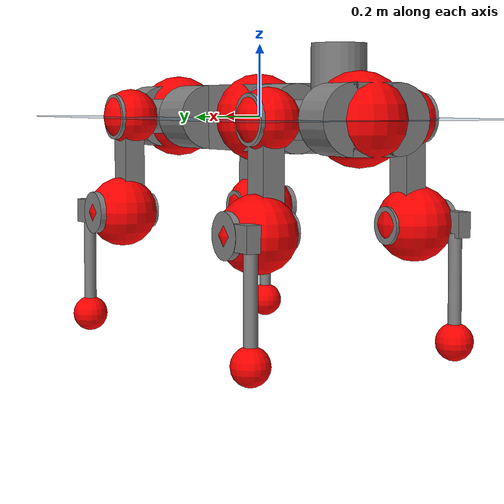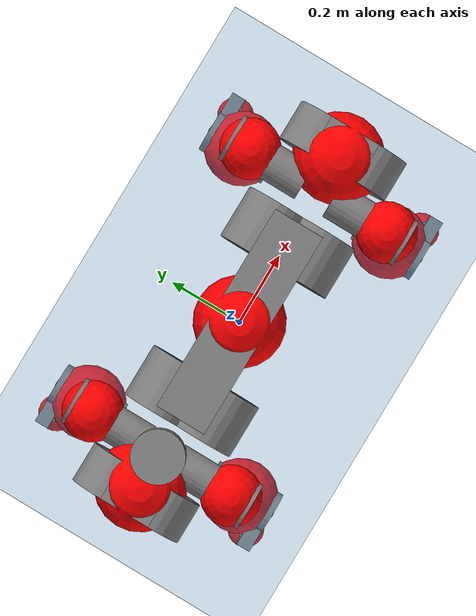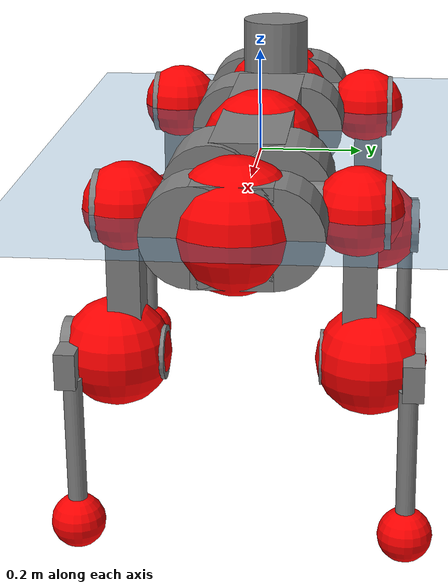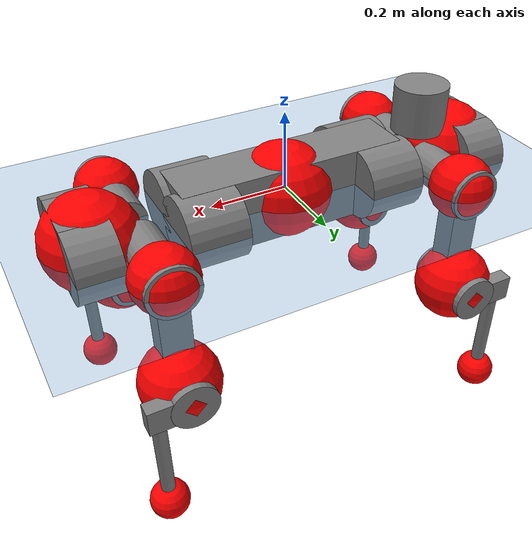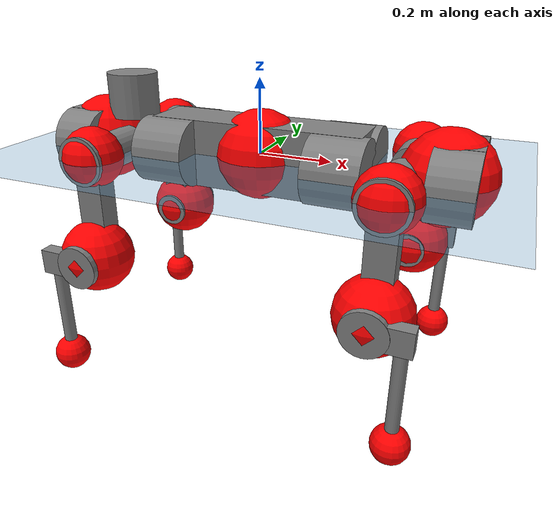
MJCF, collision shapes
<mujoco model="anymal_c">
  <compiler angle="radian" assetdir="assets" balanceinertia="true" inertiafromgeom="false"/>

  <option timestep="0.005" density="1.2" viscosity="2e-05"/>

  <size nkey="1"/>

  <visual>
    <quality shadowsize="8192"/>
    <map shadowclip="0.5"/>
  </visual>

  <default>
    <default class="/">
      <material specular="0" shininess="0.25"/>
      <geom contype="0" conaffinity="0" group="1" solref="-1000 -80"/>
      <site size="0.01 0.005 0.005" group="5"/>
      <general forcelimited="true" forcerange="-80 80" biastype="affine" gainprm="80" biasprm="0 -80 -2"/>
      <default class="anymal_c">
        <joint armature="0.01" damping="0.01" frictionloss="0.1"/>
        <default class="visual">
          <geom type="mesh" group="2"/>
          <default class="visual_zflip"/>
        </default>
        <default class="collision">
          <geom type="cylinder" group="3"/>
          <default class="foot">
            <geom size="0.03 0 0" type="sphere" condim="6" priority="1" friction="0.8 0.02 0.01" solimp="0.015 1 0.03"/>
          </default>
        </default>
      </default>
      <default class="reward_collision_sphere">
        <geom group="5" rgba="1 0 0 1"/>
      </default>
    </default>
  </default>

  <asset>
    <texture type="skybox" colorspace="auto" name="//unnamed_texture_0" builtin="gradient" rgb1="0.95 0.95 0.95" rgb2="0.95 0.95 0.95" width="100" height="600"/>
    <texture type="2d" colorspace="auto" name="texplane" builtin="checker" rgb1="0.345 0.575 0.748" rgb2="0.345 0.575 0.748" markrgb="1 1 1" width="512" height="512"/>
    <texture type="2d" colorspace="linear" name="base" file="base.png"/>
    <texture type="2d" colorspace="linear" name="top_shell" file="top_shell.png"/>
    <texture type="2d" colorspace="linear" name="bottom_shell" file="bottom_shell.png"/>
    <texture type="2d" colorspace="linear" name="remote" file="remote.png"/>
    <texture type="2d" colorspace="linear" name="hatch" file="hatch.png"/>
    <texture type="2d" colorspace="linear" name="handle" file="handle.png"/>
    <texture type="2d" colorspace="linear" name="face" file="face.png"/>
    <texture type="2d" colorspace="linear" name="battery" file="battery.png"/>
    <texture type="2d" colorspace="linear" name="lidar_cage" file="lidar_cage.png"/>
    <texture type="2d" colorspace="linear" name="depth_camera" file="depth_camera.png"/>
    <texture type="2d" colorspace="linear" name="wide_angle_camera" file="wide_angle_camera.png"/>
    <texture type="2d" colorspace="linear" name="lidar" file="lidar.png"/>
    <texture type="2d" colorspace="linear" name="drive" file="drive.png"/>
    <texture type="2d" colorspace="linear" name="hip_l" file="hip_l.png"/>
    <texture type="2d" colorspace="linear" name="shank_l" file="shank_l.png"/>
    <texture type="2d" colorspace="linear" name="foot" file="foot.png"/>
    <texture type="2d" colorspace="linear" name="thigh" file="thigh.png"/>
    <texture type="2d" colorspace="linear" name="shank_r" file="shank_r.png"/>
    <texture type="2d" colorspace="linear" name="hip_r" file="hip_r.png"/>
    <material name="MatPlane" class="/" texture="texplane" texuniform="true" texrepeat="2 2" specular="0.9" shininess="0.5"/>
    <material name="black_plastic" class="/" rgba="0.007 0.007 0.007 1"/>
    <material name="green" class="/" rgba="0.052 0.178 0.033 1"/>
    <material name="red" class="/" rgba="0.178 0.006 0.005 1"/>
    <material name="yellow" class="/" rgba="0.178 0.119 0.006 1"/>
    <material name="lwl" class="/" rgba="0.8 0.8 0.8 1"/>
    <material name="base" class="/" texture="base"/>
    <material name="top_shell" class="/" texture="top_shell"/>
    <material name="bottom_shell" class="/" texture="bottom_shell"/>
    <material name="hip_l" class="/" texture="hip_l"/>
    <material name="thigh" class="/" texture="thigh"/>
    <material name="shank_l" class="/" texture="shank_l"/>
    <material name="foot" class="/" texture="foot"/>
    <material name="hip_r" class="/" texture="hip_r"/>
    <material name="shank" class="/" texture="shank_r"/>
    <material name="hatch" class="/" texture="hatch"/>
    <material name="remote" class="/" texture="remote"/>
    <material name="handle" class="/" texture="handle"/>
    <material name="face" class="/" texture="face"/>
    <material name="depth_camera" class="/" texture="depth_camera"/>
    <material name="wide_angle_camera" class="/" texture="wide_angle_camera"/>
    <material name="battery" class="/" texture="battery"/>
    <material name="lidar_cage" class="/" texture="lidar_cage"/>
    <material name="lidar" class="/" texture="lidar"/>
    <material name="drive" class="/" texture="drive"/>
    <mesh name="base_0" class="/" file="base_0.obj"/>
    <mesh name="base_1" class="/" file="base_1.obj"/>
    <mesh name="base_2" class="/" file="base_2.obj"/>
    <mesh name="base_3" class="/" file="base_3.obj"/>
    <mesh name="base_4" class="/" file="base_4.obj"/>
    <mesh name="base_5" class="/" file="base_5.obj"/>
    <mesh name="top_shell" class="/" file="top_shell.obj"/>
    <mesh name="bottom_shell" class="/" file="bottom_shell.obj"/>
    <mesh name="remote" class="/" file="remote.obj"/>
    <mesh name="handle" class="/" file="handle.obj"/>
    <mesh name="face" class="/" file="face.obj"/>
    <mesh name="wide_angle_camera" class="/" file="wide_angle_camera.obj"/>
    <mesh name="depth_camera" class="/" file="depth_camera.obj"/>
    <mesh name="battery" class="/" file="battery.obj"/>
    <mesh name="lidar_cage" class="/" file="lidar_cage.obj"/>
    <mesh name="lidar" class="/" file="lidar.obj"/>
    <mesh name="drive" class="/" file="drive.obj"/>
    <mesh name="hip_l" class="/" file="hip_l.obj"/>
    <mesh name="thigh" class="/" file="thigh.obj"/>
    <mesh name="shank_l" class="/" file="shank_l.obj"/>
    <mesh name="foot" class="/" file="foot.obj"/>
    <mesh name="hip_r" class="/" file="hip_r.obj"/>
    <mesh name="hatch" class="/" file="hatch.obj"/>
    <mesh name="shank_r" class="/" file="shank_r.obj"/>
  </asset>

  <worldbody>
    <geom name="floor" class="/" size="100 100 0.125" type="plane" group="0" material="MatPlane"/>
    <light name="toplight_shadow" class="/" pos="0 0 5" dir="0.0990148 0.0990148 -0.990148" type="directional" ambient="0.04 0.04 0.04" diffuse="0.55 0.55 0.55" specular="0.12 0.12 0.12"/>
    <light name="toplight_fill" class="/" pos="0 0 5" dir="0.0990148 0.0990148 -0.990148" type="directional" castshadow="false" ambient="0.04 0.04 0.04" diffuse="0.3 0.3 0.3" specular="0.08 0.08 0.08"/>
    <body name="trunk" childclass="anymal_c" pos="0.00240496 0.00012383 -0.00116361" quat="0.999999 0.000714551 0.0009607 -0.000613517">
      <inertial pos="-1.28065e-06 0.000632818 0.0486748" quat="0.496123 0.503694 0.500229 0.499925" mass="18.8597" diaginertia="0.981924 0.487317 0.19072"/>
      <joint name="//unnamed_joint_0" type="free" armature="0" damping="0" frictionloss="0"/>
      <geom name="//unnamed_geom_1" class="visual" material="green" mesh="base_0"/>
      <geom name="//unnamed_geom_2" class="visual" material="yellow" mesh="base_1"/>
      <geom name="//unnamed_geom_3" class="visual" material="red" mesh="base_2"/>
      <geom name="//unnamed_geom_4" class="visual" material="black_plastic" mesh="base_3"/>
      <geom name="//unnamed_geom_5" class="visual" material="lwl" mesh="base_4"/>
      <geom name="//unnamed_geom_6" class="visual" material="base" mesh="base_5"/>
      <geom name="trunk_1" class="collision" size="0.292162 0.0705218 0.0906709" type="box"/>
      <geom name="trunk_2" class="collision" size="0.0906709 0.0730404" pos="0.237522 0.0667918 0" quat="0.707107 0 0.707107 0"/>
      <geom name="trunk_3" class="collision" size="0.0906709 0.0730404" pos="-0.237522 0.0667918 0" quat="0.707107 0 0.707107 0"/>
      <geom name="trunk_4" class="collision" size="0.0906709 0.0730404" pos="0.237522 -0.0667918 0" quat="0.707107 0 0.707107 0"/>
      <geom name="trunk_5" class="collision" size="0.0906709 0.0730404" pos="-0.237522 -0.0667918 0" quat="0.707107 0 0.707107 0"/>
      <geom name="//unnamed_geom_12" class="visual" material="top_shell" mesh="top_shell"/>
      <geom name="//unnamed_geom_13" class="visual" material="bottom_shell" mesh="bottom_shell"/>
      <geom name="//unnamed_geom_14" class="visual" material="remote" mesh="remote"/>
      <geom name="//unnamed_geom_15" class="visual" material="handle" mesh="handle"/>
      <geom name="//unnamed_geom_16" class="visual" pos="0.452658 0 0" quat="1 0 0 0" material="face" mesh="face"/>
      <geom name="trunk_6" class="collision" size="0.05541 0.0705218 0.0906709" pos="0.512721 0 0" type="box"/>
      <geom name="//unnamed_geom_18" class="collision" size="0.0906709 0.05541" pos="0.512721 0.0667918 0" quat="0.707107 0 0.707107 0"/>
      <geom name="//unnamed_geom_19" class="collision" size="0.0906709 0.05541" pos="0.512721 -0.0667918 0" quat="0.707107 0 0.707107 0"/>
      <geom name="//unnamed_geom_20" class="visual" pos="0.504143 0 -0.0276222" quat="0.965926 0 0.258819 0" material="depth_camera" mesh="depth_camera"/>
      <geom name="//unnamed_geom_21" class="visual" pos="0.560225 0 0.0146128" material="wide_angle_camera" mesh="wide_angle_camera"/>
      <geom name="//unnamed_geom_22" class="visual_zflip" pos="-0.452658 0 0" quat="0 0 0 1" material="face" mesh="face"/>
      <geom name="trunk_7" class="collision" size="0.05541 0.0705218 0.0906709" pos="-0.512721 0 0" quat="0 0 0 1" type="box"/>
      <geom name="//unnamed_geom_24" class="collision" size="0.0906709 0.05541" pos="-0.512721 -0.0667918 0" quat="0 -0.707107 0 0.707107"/>
      <geom name="//unnamed_geom_25" class="collision" size="0.0906709 0.05541" pos="-0.512721 0.0667918 0" quat="0 -0.707107 0 0.707107"/>
      <geom name="//unnamed_geom_26" class="visual" pos="-0.504143 0 -0.0276222" quat="0 -0.258819 0 0.965926" material="depth_camera" mesh="depth_camera"/>
      <geom name="//unnamed_geom_27" class="visual_zflip" pos="-0.560225 0 0.0146128" quat="0 0 0 1" material="wide_angle_camera" mesh="wide_angle_camera"/>
      <geom name="//unnamed_geom_28" class="visual" material="battery" mesh="battery"/>
      <geom name="//unnamed_geom_29" class="visual" pos="0 0.0711416 0.0292377" quat="0.683013 -0.183013 0.183013 0.683013" material="depth_camera" mesh="depth_camera"/>
      <geom name="//unnamed_geom_30" class="visual" pos="0 -0.0711416 0.0292377" quat="0.683013 0.183013 0.183013 -0.683013" material="depth_camera" mesh="depth_camera"/>
      <geom name="//unnamed_geom_31" class="visual" pos="-0.397509 0 0.071746" quat="1 0 0 0" material="lidar_cage" mesh="lidar_cage"/>
      <geom name="trunk_8" class="collision" size="0.0705218 0.0604472" pos="-0.397509 0 0.130314"/>
      <geom name="//unnamed_geom_33" class="visual" pos="-0.397509 -5.41725e-05 0.138807" quat="0.707107 0 0 -0.707107" material="lidar" mesh="lidar"/>
      <geom name="//unnamed_geom_34" class="visual" pos="0.327508 0.0992414 -3.78931e-10" quat="0.258819 0.965926 0 0" material="drive" mesh="drive"/>
      <geom name="//unnamed_geom_35" class="visual" pos="0.327508 -0.0992414 3.78931e-10" quat="0.258819 -0.965926 0 0" material="drive" mesh="drive"/>
      <geom name="//unnamed_geom_36" class="visual" pos="-0.327508 0.0992414 3.78931e-10" quat="0 0 0.965926 -0.258819" material="drive" mesh="drive"/>
      <geom name="//unnamed_geom_37" class="visual" pos="-0.327508 -0.0992414 -3.78931e-10" quat="0 0 -0.965926 -0.258819" material="drive" mesh="drive"/>
      <geom name="//unnamed_geom_38" class="visual" pos="0.126679 0 0.0712579" quat="1 0 0 0" material="hatch" mesh="hatch"/>
      <geom name="//unnamed_geom_39" class="reward_collision_sphere" size="0.120894"/>
      <geom name="//unnamed_geom_40" class="reward_collision_sphere" size="0.120894" pos="0.491426 0 0"/>
      <geom name="//unnamed_geom_41" class="reward_collision_sphere" size="0.120894" pos="-0.491426 0 0"/>
      <site name="imu" pos="0.273362 0.016363 0.0588535" size="0.0100745"/>
      <camera name="track" pos="0 -1.90834 0" quat="0.707107 0.707107 0 0" mode="trackcom"/>
      <camera name="ego_camera" pos="0.491426 0 -0.0390454" quat="-0.5 -0.5 0.5 0.5"/>
      <body name="LF_HIP" pos="0.327755 0.100588 0.00032186" quat="0.258921 0.965898 -0.000323801 -0.000288557">
        <inertial pos="0.0610128 -0.0167588 -0.00692032" quat="-0.12588 0.709937 -0.133278 0.679986" mass="2.76802" diaginertia="0.00925424 0.00391491 0.0029183"/>
        <joint name="LF_HAA" pos="0 0 0" axis="0.999901 0.000485309 -0.0140756" range="-0.668752 0.507035" armature="0.00990852" damping="0.0170465" frictionloss="0.0993209"/>
        <geom name="//unnamed_geom_42" class="visual" pos="0 -2.22908e-05 3.66124e-06" quat="0.258819 -0.965926 0 0" material="hip_l" mesh="hip_l"/>
        <geom name="//unnamed_geom_43" class="visual" pos="0.0654142 -0.0774555 -0.0448815" quat="0.183013 -0.683013 0.683013 0.183013" material="drive" mesh="drive"/>
        <geom name="//unnamed_geom_44" class="collision" size="0.0503727 0.0705218" pos="0.0654142 -0.0114117 -0.00674022" quat="-0.353553 -0.612372 0.612372 -0.353553"/>
        <body name="LF_THIGH" pos="0.0672717 -0.0689092 -0.0389809" quat="0.18262 -0.682111 0.683976 0.183169">
          <inertial pos="0.0364549 -0.00209483 -0.242532" quat="0.993202 -0.00557842 -0.0803766 0.0840162" mass="3.03885" diaginertia="0.0462221 0.0228334 0.00369214"/>
          <joint name="LF_HFE" pos="0 0 0" axis="1 -9.67294e-05 -0.000319934" range="-3.1302 3.14267" armature="0.00982959" damping="0.0133924" frictionloss="0.100483"/>
          <geom name="//unnamed_geom_45" class="visual" pos="0.00274343 4.323e-06 0" quat="0.707107 0 0 -0.707107" material="thigh" mesh="thigh"/>
          <geom name="//unnamed_geom_46" class="collision" size="0.0654845 0.0402982" pos="0.0436823 0 0" quat="0.5 0.5 -0.5 -0.5"/>
          <geom name="//unnamed_geom_47" class="collision" size="0.0377795 0.0302236 0.142367" pos="0.0327617 0 -0.137942" quat="0.707107 0 0 -0.707107" type="box"/>
          <geom name="//unnamed_geom_48" class="visual" pos="0.109533 0 -0.278199" quat="1 0 0 0" material="drive" mesh="drive"/>
          <geom name="//unnamed_geom_49" class="collision" size="0.0503727 0.0705218" pos="0.0330893 0 -0.278199" quat="0.707107 0 0.707107 0"/>
          <geom name="//unnamed_geom_50" class="reward_collision_sphere" size="0.0805963" pos="0.0273014 0 0"/>
          <body name="LF_SHANK" pos="0.108718 -0.00311051 -0.278071" quat="0.999999 -0.000202086 -0.00101111 0.000533121">
            <inertial pos="0.00322734 -0.0583688 -0.0764219" quat="0.993024 -0.114849 0.000587941 -0.0266765" mass="0.60064" diaginertia="0.0158449 0.00772396 0.00101582"/>
            <joint name="LF_KFE" pos="0 0 0" axis="0.999997 -0.00192024 -0.00119181" range="-3.19457 3.14246" armature="0.0107612" damping="0" frictionloss="0.108463"/>
            <geom name="//unnamed_geom_51" class="visual" pos="0.000894572 0.0047699 0" quat="0.707107 0 0 -0.707107" material="shank_l" mesh="shank_l"/>
            <geom name="LF_kfe_act" class="collision" size="0.0604472 0.0201491" pos="0.0218411 0 0" quat="0.5 0.5 -0.5 -0.5"/>
            <geom name="//unnamed_geom_53" class="collision" size="0.0579276 0.0340016 0.0191416" pos="0.0218411 -0.0548638 0" quat="0.5 0.5 -0.5 -0.5" type="box"/>
            <geom name="//unnamed_geom_54" class="visual" pos="0.0142511 -0.082382 -0.329905" quat="0.382683 0 0 -0.92388" material="foot" mesh="foot"/>
            <geom name="LF_calf" class="collision" size="0.0176304 0.142305" pos="0.0142513 -0.0839192 -0.164952" quat="0.707107 0 0 -0.707107"/>
            <geom name="LF_foot" class="foot" size="0.0322544" pos="0.0142513 -0.0839192 -0.307942" quat="0.707107 0 0 -0.707107"/>
            <geom name="//unnamed_geom_57" class="reward_collision_sphere" size="0.100745" pos="-0.0546028 0 0"/>
            <geom name="//unnamed_geom_58" class="reward_collision_sphere" size="0.0503727" pos="0.0142513 -0.0839192 -0.307942"/>
            <site name="LF_foot" class="foot" pos="0.0142513 -0.0839192 -0.307942" quat="0.707107 0 0 -0.707107" size="0.0100745"/>
          </body>
        </body>
      </body>
      <body name="RF_HIP" pos="0.32685 -0.0990494 -0.00249167" quat="0.260228 -0.965547 1.74355e-07 -0.000433221">
        <inertial pos="0.0635696 0.0122989 -0.00785619" quat="0.126501 0.67214 0.129254 0.717997" mass="2.81188" diaginertia="0.0086059 0.00380853 0.00277115"/>
        <joint name="RF_HAA" pos="0 0 0" axis="0.999983 -0.003817 0.00431255" range="-0.49458 0.726027" armature="0.0098922" damping="0.00943041" frictionloss="0.0868354"/>
        <geom name="//unnamed_geom_59" class="visual" pos="0 2.22906e-05 3.66123e-06" quat="0.258819 0.965926 0 0" material="hip_r" mesh="hip_r"/>
        <geom name="//unnamed_geom_60" class="visual" pos="0.0654142 0.0774555 -0.0448815" quat="0.183013 0.683013 0.683013 -0.183013" material="drive" mesh="drive"/>
        <geom name="//unnamed_geom_61" class="collision" size="0.0503727 0.0705218" pos="0.0654142 0.0114117 -0.00674022" quat="-0.353553 0.612372 0.612372 0.353553"/>
        <body name="RF_THIGH" pos="0.0654145 0.0664803 -0.0400699" quat="0.18297 0.682932 0.683029 -0.183296">
          <inertial pos="0.0355516 -0.00269906 -0.239046" quat="0.993486 -0.0140647 -0.0758534 0.0838701" mass="3.17118" diaginertia="0.0465015 0.0233043 0.00377456"/>
          <joint name="RF_HFE" pos="0 0 0" axis="0.999999 0.0012658 0.00108055" range="-3.12192 3.19433" armature="0.0100302" damping="0.0148547" frictionloss="0.10536"/>
          <geom name="//unnamed_geom_62" class="visual" pos="0.00274343 4.323e-06 0" quat="0.707107 0 0 -0.707107" material="thigh" mesh="thigh"/>
          <geom name="//unnamed_geom_63" class="collision" size="0.0654845 0.0402982" pos="0.0436823 0 0" quat="0.5 0.5 0.5 0.5"/>
          <geom name="//unnamed_geom_64" class="collision" size="0.0377795 0.0302236 0.142367" pos="0.0327617 0 -0.137942" quat="0.707107 0 0 0.707107" type="box"/>
          <geom name="//unnamed_geom_65" class="visual" pos="0.109533 0 -0.278199" quat="1 0 0 0" material="drive" mesh="drive"/>
          <geom name="//unnamed_geom_66" class="collision" size="0.0503727 0.0705218" pos="0.0330893 0 -0.278199" quat="0.707107 0 0.707107 0"/>
          <geom name="//unnamed_geom_67" class="reward_collision_sphere" size="0.0805963" pos="0.0273014 0 0"/>
          <body name="RF_SHANK" pos="0.109126 -0.00249672 -0.278441" quat="1 0.00012875 -3.19989e-05 -4.09538e-06">
            <inertial pos="0.00627786 0.058513 -0.0781328" quat="0.994015 0.105604 0.00786712 0.0268451" mass="0.599807" diaginertia="0.0157694 0.00732107 0.000961685"/>
            <joint name="RF_KFE" pos="0 0 0" axis="0.999963 -0.00579233 -0.00639546" range="-3.15028 3.18547" armature="0.0101073" damping="0.022693" frictionloss="0.0979002"/>
            <geom name="//unnamed_geom_68" class="visual" pos="0.000894567 -0.00476989 0" quat="0.707107 0 0 0.707107" material="shank" mesh="shank_r"/>
            <geom name="RF_kfe_act" class="collision" size="0.0604472 0.0201491" pos="0.0218411 0 0" quat="0.5 0.5 0.5 0.5"/>
            <geom name="//unnamed_geom_70" class="collision" size="0.0579276 0.0340016 0.0191416" pos="0.0218411 0.0548638 0" quat="0.5 0.5 0.5 0.5" type="box"/>
            <geom name="//unnamed_geom_71" class="visual" pos="0.0142516 0.082382 -0.329905" quat="0.382683 0 0 0.92388" material="foot" mesh="foot"/>
            <geom name="RF_calf" class="collision" size="0.0176304 0.142305" pos="0.0142513 0.0839192 -0.164952" quat="0.707107 0 0 0.707107"/>
            <geom name="RF_foot" class="foot" size="0.0267068" pos="0.0142513 0.0839192 -0.307942" quat="0.707107 0 0 0.707107"/>
            <geom name="//unnamed_geom_74" class="reward_collision_sphere" size="0.100745" pos="-0.0546028 0 0"/>
            <geom name="//unnamed_geom_75" class="reward_collision_sphere" size="0.0503727" pos="0.0142513 0.0839192 -0.307942"/>
            <site name="RF_foot" class="foot" pos="0.0142513 0.0839192 -0.307942" quat="0.707107 0 0 0.707107" size="0.0100745"/>
          </body>
        </body>
      </body>
      <body name="LH_HIP" pos="-0.327105 0.0997825 -0.00133652" quat="0.00014889 0.000170504 0.965919 -0.258845">
        <inertial pos="0.0624073 0.0169804 -0.0107699" quat="0.124741 0.680023 0.132615 0.710226" mass="2.90083" diaginertia="0.00893744 0.00381623 0.00297782"/>
        <joint name="LH_HAA" pos="0 0 0" axis="1 -0.000314911 0.000514448" stiffness="0.00100405" range="-0.473055 0.685767" armature="0.00878415" damping="0.0122766" frictionloss="0.114658"/>
        <geom name="//unnamed_geom_76" class="visual" pos="0 2.22906e-05 3.66123e-06" quat="-0.258819 -0.965926 0 0" material="hip_r" mesh="hip_r"/>
        <geom name="//unnamed_geom_77" class="visual" pos="0.0654142 0.0774555 -0.0448815" quat="0.183013 0.683013 0.683013 -0.183013" material="drive" mesh="drive"/>
        <geom name="//unnamed_geom_78" class="collision" size="0.0503727 0.0705218" pos="0.0654142 0.0114117 -0.00674022" quat="-0.353553 0.612372 0.612372 0.353553"/>
        <body name="LH_THIGH" pos="0.0651661 0.0662287 -0.0391631" quat="0.183318 0.683144 0.682842 -0.182852">
          <inertial pos="0.0338989 -4.03563e-05 -0.240673" quat="0.992829 -0.00543495 -0.0806499 0.088068" mass="3.21609" diaginertia="0.0468133 0.0231418 0.00378327"/>
          <joint name="LH_HFE" pos="0 0 0" axis="0.999967 0.00214522 -0.00787977" stiffness="0.00771578" range="-3.13819 3.136" armature="0.0113359" damping="0" frictionloss="0.10003"/>
          <geom name="//unnamed_geom_79" class="visual" pos="0.00274343 4.323e-06 0" quat="0.707107 0 0 -0.707107" material="thigh" mesh="thigh"/>
          <geom name="//unnamed_geom_80" class="collision" size="0.0654845 0.0402982" pos="0.0436823 0 0" quat="0.5 0.5 -0.5 -0.5"/>
          <geom name="//unnamed_geom_81" class="collision" size="0.0377795 0.0302236 0.142367" pos="0.0327617 0 -0.137942" quat="0.707107 0 0 -0.707107" type="box"/>
          <geom name="//unnamed_geom_82" class="visual" pos="0.109533 0 -0.278199" quat="1 0 0 0" material="drive" mesh="drive"/>
          <geom name="//unnamed_geom_83" class="collision" size="0.0503727 0.0705218" pos="0.0330893 0 -0.278199" quat="0.707107 0 0.707107 0"/>
          <geom name="//unnamed_geom_84" class="reward_collision_sphere" size="0.0805963" pos="0.0273014 0 0"/>
          <body name="LH_SHANK" pos="0.10996 -0.000362705 -0.280535" quat="1 -0.00042056 0.000371414 4.59643e-05">
            <inertial pos="0.00590068 0.0608366 -0.0788075" quat="0.993193 0.11195 -0.000688745 0.0321684" mass="0.600959" diaginertia="0.0154403 0.00731166 0.000960423"/>
            <joint name="LH_KFE" pos="0 0 0" axis="0.999945 0.000595839 -0.0104501" range="-3.14119 3.15885" armature="0.010918" damping="0" frictionloss="0.113719"/>
            <geom name="//unnamed_geom_85" class="visual" pos="0.000894567 -0.00476989 0" quat="-0.707107 0 0 -0.707107" material="shank" mesh="shank_r"/>
            <geom name="LH_kfe_act" class="collision" size="0.0604472 0.0201491" pos="0.0218411 0 0" quat="0.5 0.5 -0.5 -0.5"/>
            <geom name="//unnamed_geom_87" class="collision" size="0.0579276 0.0340016 0.0191416" pos="0.0218411 0.0548638 0" quat="0.5 0.5 -0.5 -0.5" type="box"/>
            <geom name="//unnamed_geom_88" class="visual" pos="0.0142516 0.082382 -0.329905" quat="-0.382683 0 0 -0.92388" material="foot" mesh="foot"/>
            <geom name="LH_calf" class="collision" size="0.0176304 0.142305" pos="0.0142513 0.0839192 -0.164952" quat="0.707107 0 0 -0.707107"/>
            <geom name="LH_foot" class="foot" size="0.0310502" pos="0.0142513 0.0839192 -0.307942" quat="0.707107 0 0 -0.707107"/>
            <geom name="//unnamed_geom_91" class="reward_collision_sphere" size="0.100745" pos="-0.0546028 0 0"/>
            <geom name="//unnamed_geom_92" class="reward_collision_sphere" size="0.0503727" pos="0.0142513 0.0839192 -0.307942"/>
            <site name="LH_foot" class="foot" pos="0.0142513 0.0839192 -0.307942" quat="0.707107 0 0 -0.707107" size="0.0100745"/>
          </body>
        </body>
      </body>
      <body name="RH_HIP" pos="-0.327612 -0.101257 -0.00116349" quat="0.000261577 -0.000361694 -0.966237 -0.257655">
        <inertial pos="0.0644382 -0.0121457 -0.0108837" quat="-0.136965 0.70899 -0.127107 0.680013" mass="2.83671" diaginertia="0.00900564 0.00385209 0.00292064"/>
        <joint name="RH_HAA" pos="0 0 0" axis="0.999913 0.00161214 0.0131142" stiffness="0.00234015" range="-0.722685 0.471055" armature="0.00942088" damping="0.0149525" frictionloss="0.0954084"/>
        <geom name="//unnamed_geom_93" class="visual" pos="0 -2.22908e-05 3.66124e-06" quat="-0.258819 0.965926 0 0" material="hip_l" mesh="hip_l"/>
        <geom name="//unnamed_geom_94" class="visual" pos="0.0654142 -0.0774555 -0.0448815" quat="-0.183013 0.683013 -0.683013 -0.183013" material="drive" mesh="drive"/>
        <geom name="//unnamed_geom_95" class="collision" size="0.0503727 0.0705218" pos="0.0654142 -0.0114117 -0.00674022" quat="0.353553 0.612372 -0.612372 0.353553"/>
        <body name="RH_THIGH" pos="0.066061 -0.0716727 -0.0437107" quat="-0.183067 0.68292 -0.68312 -0.182904">
          <inertial pos="0.0346371 -0.000228121 -0.239478" quat="0.993288 -0.00404778 -0.0799398 0.0834979" mass="3.03009" diaginertia="0.0475912 0.0243009 0.00369163"/>
          <joint name="RH_HFE" pos="0 0 0" axis="0.999998 0.00153112 0.00143004" range="-3.13616 3.20013" armature="0.0103606" damping="0.00935714" frictionloss="0.0954668"/>
          <geom name="//unnamed_geom_96" class="visual" pos="0.00274343 4.323e-06 0" quat="0.707107 0 0 -0.707107" material="thigh" mesh="thigh"/>
          <geom name="//unnamed_geom_97" class="collision" size="0.0654845 0.0402982" pos="0.0436823 0 0" quat="0.5 0.5 0.5 0.5"/>
          <geom name="//unnamed_geom_98" class="collision" size="0.0377795 0.0302236 0.142367" pos="0.0327617 0 -0.137942" quat="0.707107 0 0 0.707107" type="box"/>
          <geom name="//unnamed_geom_99" class="visual" pos="0.109533 0 -0.278199" quat="1 0 0 0" material="drive" mesh="drive"/>
          <geom name="//unnamed_geom_100" class="collision" size="0.0503727 0.0705218" pos="0.0330893 0 -0.278199" quat="0.707107 0 0.707107 0"/>
          <geom name="//unnamed_geom_101" class="reward_collision_sphere" size="0.0805963" pos="0.0273014 0 0"/>
          <body name="RH_SHANK" pos="0.110621 -0.000512993 -0.275826" quat="1 -5.04737e-05 -0.000214962 0.000173228">
            <inertial pos="0.00354982 -0.0593576 -0.079308" quat="0.992419 -0.120116 0.00608357 -0.0252959" mass="0.604983" diaginertia="0.0159097 0.00738368 0.00102949"/>
            <joint name="RH_KFE" pos="0 0 0" axis="0.999886 -0.013365 -0.00698717" range="-3.11729 3.13119" armature="0.0103801" damping="0.0219193" frictionloss="0.103949"/>
            <geom name="//unnamed_geom_102" class="visual" pos="0.000894572 0.0047699 0" quat="0.707107 0 0 -0.707107" material="shank_l" mesh="shank_l"/>
            <geom name="RH_kfe_act" class="collision" size="0.0604472 0.0201491" pos="0.0218411 0 0" quat="0.5 0.5 0.5 0.5"/>
            <geom name="//unnamed_geom_104" class="collision" size="0.0579276 0.0340016 0.0191416" pos="0.0218411 -0.0548638 0" quat="0.5 0.5 0.5 0.5" type="box"/>
            <geom name="//unnamed_geom_105" class="visual" pos="0.0142511 -0.082382 -0.329905" quat="0.382683 0 0 -0.92388" material="foot" mesh="foot"/>
            <geom name="RH_calf" class="collision" size="0.0176304 0.142305" pos="0.0142513 -0.0839192 -0.164952" quat="0.707107 0 0 0.707107"/>
            <geom name="RH_foot" class="foot" size="0.0274182" pos="0.0142513 -0.0839192 -0.307942" quat="0.707107 0 0 0.707107"/>
            <geom name="//unnamed_geom_108" class="reward_collision_sphere" size="0.100745" pos="-0.0546028 0 0"/>
            <geom name="//unnamed_geom_109" class="reward_collision_sphere" size="0.0503727" pos="0.0142513 -0.0839192 -0.307942"/>
            <site name="RH_foot" class="foot" pos="0.0142513 -0.0839192 -0.307942" quat="0.707107 0 0 0.707107" size="0.0100745"/>
          </body>
        </body>
      </body>
    </body>
  </worldbody>

  <contact>
    <pair class="/" geom1="floor" geom2="LF_foot" name="//unnamed_contact_0"/>
    <pair class="/" geom1="floor" geom2="RF_foot" name="//unnamed_contact_1"/>
    <pair class="/" geom1="floor" geom2="LH_foot" name="//unnamed_contact_2"/>
    <pair class="/" geom1="floor" geom2="RH_foot" name="//unnamed_contact_3"/>
  </contact>

  <actuator>
    <general name="LF_HAA" class="/" joint="LF_HAA" forcerange="-81.8882 81.8882" gainprm="82.6188" biasprm="0 -82.6188 -1.97352"/>
    <general name="LF_HFE" class="/" joint="LF_HFE" forcerange="-75.914 75.914" gainprm="82.6188" biasprm="0 -82.6188 -1.97352"/>
    <general name="LF_KFE" class="/" joint="LF_KFE" forcerange="-82.0814 82.0814" gainprm="82.6188" biasprm="0 -82.6188 -1.97352"/>
    <general name="RF_HAA" class="/" joint="RF_HAA" forcerange="-79.8951 79.8951" gainprm="82.6188" biasprm="0 -82.6188 -1.97352"/>
    <general name="RF_HFE" class="/" joint="RF_HFE" forcerange="-88.0987 88.0987" gainprm="82.6188" biasprm="0 -82.6188 -1.97352"/>
    <general name="RF_KFE" class="/" joint="RF_KFE" forcerange="-81.6097 81.6097" gainprm="82.6188" biasprm="0 -82.6188 -1.97352"/>
    <general name="LH_HAA" class="/" joint="LH_HAA" forcerange="-88.841 88.841" gainprm="82.6188" biasprm="0 -82.6188 -1.97352"/>
    <general name="LH_HFE" class="/" joint="LH_HFE" forcerange="-77.8745 77.8745" gainprm="82.6188" biasprm="0 -82.6188 -1.97352"/>
    <general name="LH_KFE" class="/" joint="LH_KFE" forcerange="-73.2551 73.2551" gainprm="82.6188" biasprm="0 -82.6188 -1.97352"/>
    <general name="RH_HAA" class="/" joint="RH_HAA" forcerange="-74.6647 74.6647" gainprm="82.6188" biasprm="0 -82.6188 -1.97352"/>
    <general name="RH_HFE" class="/" joint="RH_HFE" forcerange="-89.1299 89.1299" gainprm="82.6188" biasprm="0 -82.6188 -1.97352"/>
    <general name="RH_KFE" class="/" joint="RH_KFE" forcerange="-77.9514 77.9514" gainprm="82.6188" biasprm="0 -82.6188 -1.97352"/>
  </actuator>

  <sensor>
    <gyro site="imu" name="imu_angular_velocity"/>
    <velocimeter site="imu" name="imu_linear_velocity"/>
    <framelinvel objtype="site" objname="LF_foot" name="LF_foot_global_linear_velocity"/>
    <framelinvel objtype="site" objname="RF_foot" name="RF_foot_global_linear_velocity"/>
    <framelinvel objtype="site" objname="LH_foot" name="LH_foot_global_linear_velocity"/>
    <framelinvel objtype="site" objname="RH_foot" name="RH_foot_global_linear_velocity"/>
  </sensor>

  <keyframe>
    <key name="home" qpos="0 0 0.55 1 0 0 0 0 0.4 -0.8 0 -0.4 0.8 0 -0.4 0.8 0 0.4 -0.8"/>
  </keyframe>
</mujoco>
